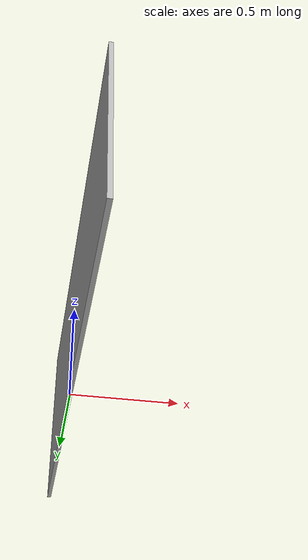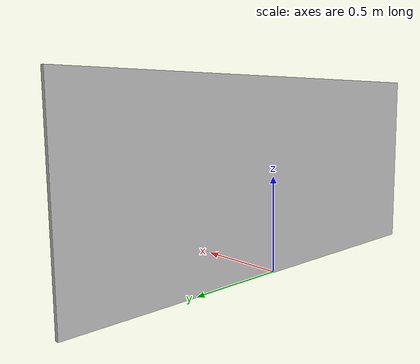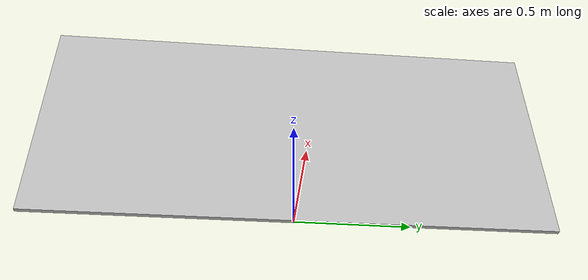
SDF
<?xml version="1.0" ?>
<sdf version="1.6">
  <model name="waypoint_panel">
    <static>1</static>
    <pose>0 0 0.5 0 0 0</pose>
    <link name="link">
      <visual name="visual">
        <pose>0 0 0 0 0 0</pose>
        <geometry>
          <mesh>
            <uri>model://waypoint_panel/meshes/waypointpanel.dae</uri>
            <scale>0.5 0.5 0.5</scale>
          </mesh>
        </geometry>
      </visual>
    </link>
  </model>
</sdf>
